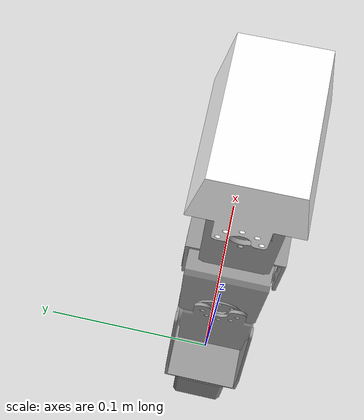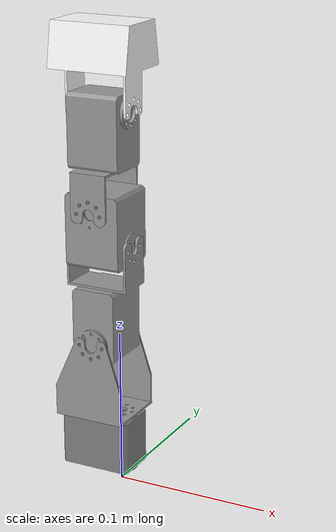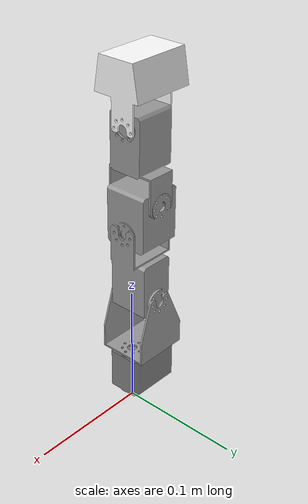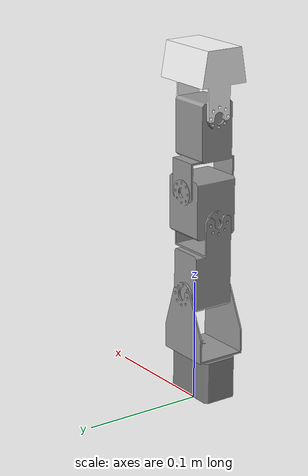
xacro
<?xml version="1.0"?>
<robot name="kyun" xmlns:xacro="http://www.ros.org/wiki/xacro">

<material name="gray">
  <color rgba="0.5 0.5 0.5 2.5"/>
</material>
<material name="white">
  <color rgba="1.0 1.0 1.0 1"/>
</material>

<link name="world"/>
<joint name="world_to_base" type="fixed">
  <origin xyz="0 0 0.0465"/>
  <parent link="world"/>
  <child link="base_link"/>
</joint>

<link name="base_link">
  <visual>
    <geometry>
      <mesh filename="package://kyun_description/mesh/servo01.stl" scale="0.001 0.001 0.001"/>
      <origin xyz="0 0 0.0465"/>
    </geometry>
    <material name="gray"/>
  </visual>
  <collision>
    <geometry>
      <mesh filename="package://kyun_description/mesh/servo01.stl" scale="0.0009 0.0009 0.0009"/>
      <origin xyz="0 0 0.0465"/>
    </geometry>
  </collision>
  <inertial>
    <mass value="0.0572"/>
    <inertia ixx="0.00093819916" ixy="0" ixz="0" iyy="0.00158169916" iyz="0" izz="0.001417845"/>
  </inertial>
</link>

<gazebo reference="base_link">
  <material>Gazebo/Grey</material>
</gazebo>

<joint name="base_to_second" type="revolute">
  <parent link="base_link"/>
  <child link="second_link"/>
  <origin xyz="0 0 0" rpy="0 0 0"/>
  <axis xyz="0 0 1"/>
  <dynamics damping="0.7"/>
  <limit lower="-1.5" upper="1.5" effort="0.5" velocity="6.0"/>
</joint>

<transmission name="base_trans">
    <type>transmission_interface/SimpleTransmission</type>
    <joint name="base_to_second">
      <hardwareInterface>hardware_interface/PositionJointInterface</hardwareInterface>
    </joint>
    <actuator name="base_motor">
      <hardwareInterface>hardware_interface/PositionJointInterface</hardwareInterface>
      <mechanismReduction>1</mechanismReduction>
    </actuator>
</transmission>

<link name="second_link">
  <visual>
    <geometry>
      <mesh filename="package://kyun_description/mesh/frame12.stl" scale="0.001 0.001 0.001"/>
      <origin xyz="0 0 0"/>
    </geometry>
    <material name="grey"/>
  </visual>
  <collision>
    <geometry>
      <mesh filename="package://kyun_description/mesh/frame12.stl" scale="0.0009 0.0009 0.0009"/>
      <origin xyz="0 0 0"/>
    </geometry>
  </collision>
  <inertial>
    <mass value="0.0228"/>
    <inertia ixx="0.0012587" ixy="0" ixz="0" iyy="0.0009052" iyz="0" izz="0.0010677"/>
  </inertial>
</link>

<gazebo reference="second_link">
  <material>Gazebo/Grey</material>
</gazebo>

<joint name="second_to_third" type="revolute">
  <parent link="second_link"/>
  <child link="third_link"/>
  <origin xyz="-0.00963 0.019 0.05" rpy="0 0 0"/>
  <axis xyz="0 1 0"/>
  <dynamics damping="0.7"/>
  <limit lower="-1.5" upper="1.5" effort="0.5" velocity="6.0"/>
</joint>

<transmission name="second_trans">
    <type>transmission_interface/SimpleTransmission</type>
    <joint name="second_to_third">
      <hardwareInterface>hardware_interface/PositionJointInterface</hardwareInterface>
    </joint>
    <actuator name="second_motor">
      <hardwareInterface>hardware_interface/PositionJointInterface</hardwareInterface>
      <mechanismReduction>1</mechanismReduction>
    </actuator>
</transmission>

<link name="third_link">
  <visual>
    <geometry>
      <mesh filename="package://kyun_description/mesh/servo02.stl" scale="0.001 0.001 0.001"/>
      <origin xyz="0 0 0"/>
    </geometry>
    <material name="grey"/>
  </visual>
  <collision>
    <geometry>
      <mesh filename="package://kyun_description/mesh/servo02.stl" scale="0.0009 0.0009 0.0009"/>
      <origin xyz="0 0 0"/>
    </geometry>
  </collision>
  <inertial>
    <mass value="0.0638"/>
    <inertia ixx="0.0021267" ixy="0" ixz="0" iyy="0.0020277" iyz="0" izz="0.0011317"/>
  </inertial>
</link>

<gazebo reference="third_link">
  <material>Gazebo/Grey</material>
</gazebo>

<joint name="third_to_fourth" type="revolute">
  <parent link="third_link"/>
  <child link="fourth_link"/>
  <origin xyz="0.019 -0.018 0.06075" rpy="0 0 0"/>
  <axis xyz="1 0 0"/>
  <dynamics damping="0.7"/>
  <limit lower="-1.5" upper="1.5" effort="0.5" velocity="6.0"/>
</joint>

<transmission name="third_trans">
    <type>transmission_interface/SimpleTransmission</type>
    <joint name="third_to_fourth">
      <hardwareInterface>hardware_interface/PositionJointInterface</hardwareInterface>
    </joint>
    <actuator name="third_motor">
      <hardwareInterface>hardware_interface/PositionJointInterface</hardwareInterface>
      <mechanismReduction>1</mechanismReduction>
    </actuator>
</transmission>

<link name="fourth_link">
  <visual>
    <geometry>
      <mesh filename="package://kyun_description/mesh/servo03.stl" scale="0.001 0.001 0.001"/>
    </geometry>
    <material name="grey"/>
  </visual>
  <collision>
    <geometry>
      <mesh filename="package://kyun_description/mesh/servo03.stl" scale="0.0009 0.0009 0.0009"/>
    </geometry>
  </collision>
  <inertial>
    <mass value="0.099806"/>
    <inertia ixx="0.0028791" ixy="0" ixz="0" iyy="0.0028648" iyz="0" izz="0.0021805"/>
  </inertial>
</link>

<gazebo reference="fourth_link">
  <material>Gazebo/Grey</material>
</gazebo>

<joint name="fourth_to_fifth" type="revolute">
  <parent link="fourth_link"/>
  <child link="fifth_link"/>
  <origin xyz="-0.019 -0.02 0.024" rpy="0 0 0"/>
  <axis xyz="0 1 0"/>
  <dynamics damping="0.7"/>
  <limit lower="-1.5" upper="1.5" effort="0.5" velocity="6.0"/>
</joint>

<transmission name="fourth_trans">
    <type>transmission_interface/SimpleTransmission</type>
    <joint name="fourth_to_fifth">
      <hardwareInterface>hardware_interface/PositionJointInterface</hardwareInterface>
    </joint>
    <actuator name="fourth_motor">
      <hardwareInterface>hardware_interface/PositionJointInterface</hardwareInterface>
      <mechanismReduction>1</mechanismReduction>
    </actuator>
</transmission>

<link name="fifth_link">
  <visual>
    <geometry>
      <mesh filename="package://kyun_description/mesh/servo04.stl" scale="0.001 0.001 0.001"/>
    </geometry>
    <material name="grey"/>
  </visual>
  <collision>
    <geometry>
      <mesh filename="package://kyun_description/mesh/servo04.stl" scale="0.0009 0.0009 0.0009"/>
    </geometry>
  </collision>
  <inertial>
    <mass value="0.063759"/>
    <inertia ixx="0.0020277" ixy="0" ixz="0" iyy="0.0021267" iyz="0" izz="0.0011317"/>
  </inertial>
</link>

<gazebo reference="fifth_link">
  <material>Gazebo/Grey</material>
</gazebo>

<joint name="fifth_to_sixth" type="revolute">
  <parent link="fifth_link"/>
  <child link="sixth_link"/>
  <origin xyz="0.0205 0.02 0.06075" rpy="0 0 0"/>
  <axis xyz="1 0 0"/>
  <dynamics damping="0.7"/>
  <limit lower="-1.5" upper="1.5" effort="0.5" velocity="6.0"/>
</joint>

<transmission name="fifth_trans">
    <type>transmission_interface/SimpleTransmission</type>
    <joint name="fifth_to_sixth">
      <hardwareInterface>hardware_interface/PositionJointInterface</hardwareInterface>
    </joint>
    <actuator name="fifth_motor">
      <hardwareInterface>hardware_interface/EPositionJointInterface</hardwareInterface>
       <mechanismReduction>1</mechanismReduction>
    </actuator>
</transmission>

<link name="sixth_link">
  <visual>
    <geometry>
      <mesh filename="package://kyun_description/mesh/frame13.stl" scale="0.001 0.001 0.001"/>
    </geometry>
    <material name="white"/>
  </visual>
  <collision>
    <geometry>
      <mesh filename="package://kyun_description/mesh/frame13.stl" scale="0.0009 0.0009 0.0009"/>
    </geometry>
  </collision>
  <inertial>
    <mass value="0.059571"/>
    <inertia ixx="0.0011416" ixy="0" ixz="0" iyy="0.0011103" iyz="0" izz="0.0020421"/>
  </inertial>
</link>

<gazebo reference="sixth_link">
  <material>Gazebo/white</material>
</gazebo>

<gazebo>
  <plugin name="gazebo_ros_control" filename="libgazebo_ros_control.so">
    <robotNamespace>/kyun</robotNamespace>
    <robotSimType>gazebo_ros_control/DefaultRobotHWSim</robotSimType>
    <legacyModeNS>true</legacyModeNS>
  </plugin>
  <plugin name="joint_state_publisher" filename="libgazebo_ros_joint_state_publisher.so">
    <jointName>base_to_second, second_to_third, third_to_fourth, fourth_to_fifth, fifth_to_sixth</jointName>
  </plugin>
</gazebo>

</robot>
